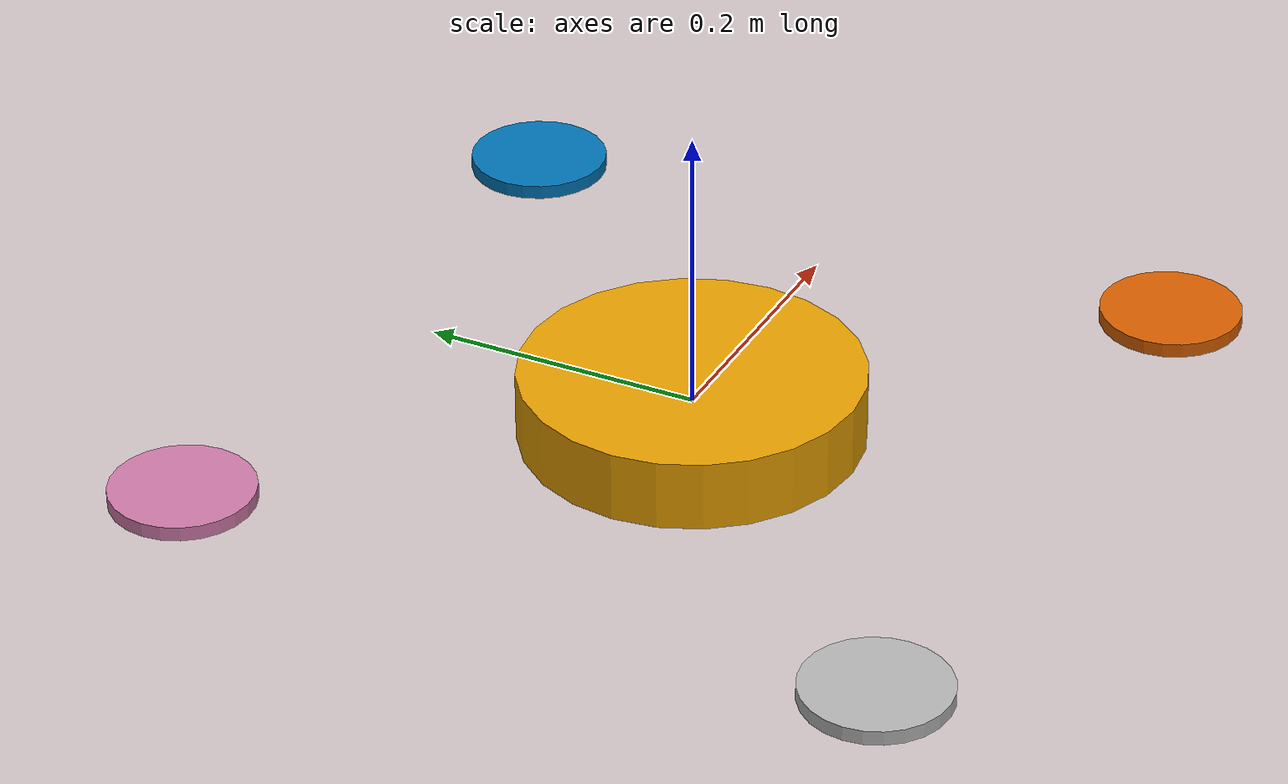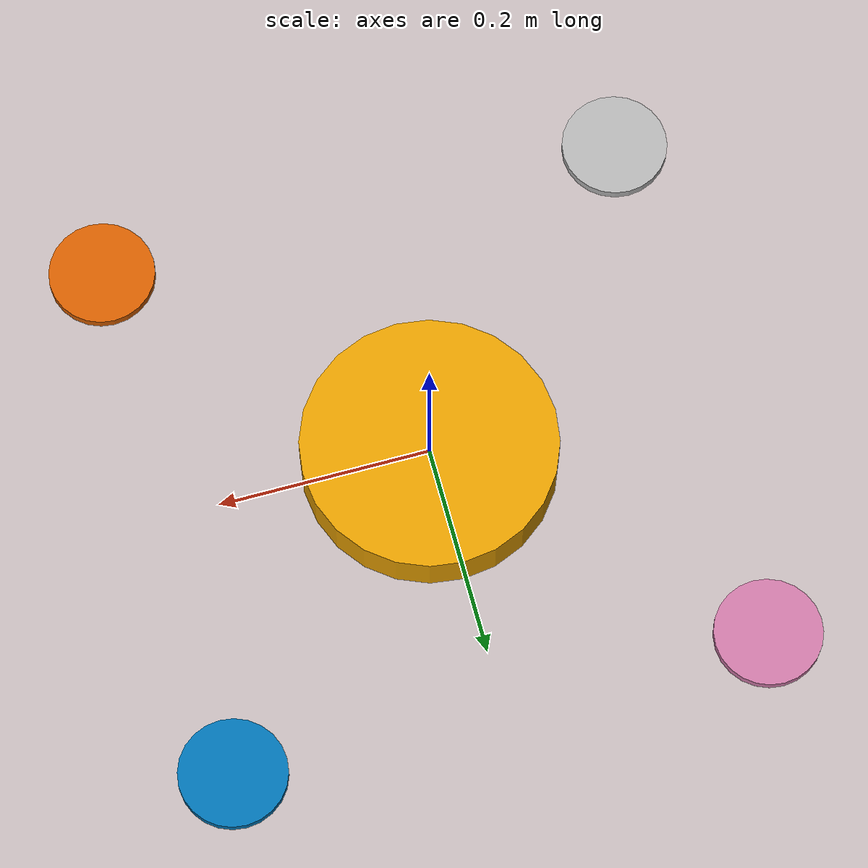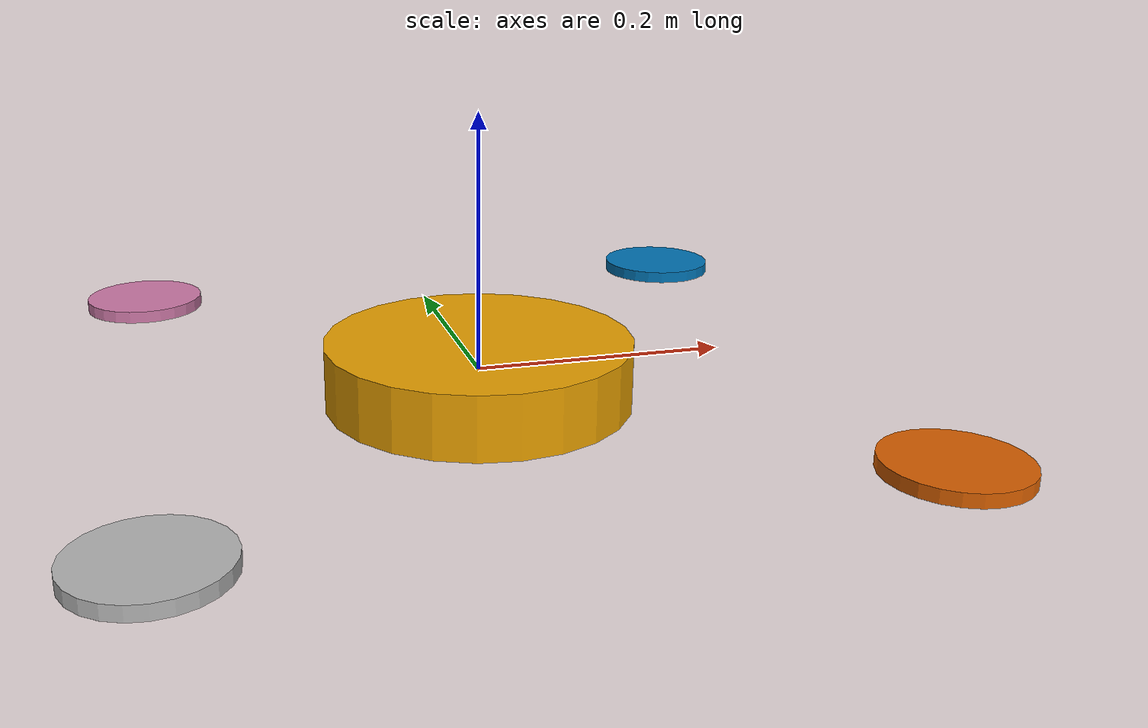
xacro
<?xml version="1.0"?>
<robot xmlns:xacro="http://www.ros.org/wiki/xacro" name="drone">

  <!-- Parameters -->
  <xacro:property name="mass" value="1.0"/>
  <xacro:property name="arm_length" value="0.25"/>
  <xacro:arg name="robot_ns" default=""/>
  <xacro:property name="robot_ns" value="$(arg robot_ns)"/>

  <!-- Base body -->
  <link name="base_link">
    <inertial>
      <mass value="${mass}"/>
      <origin xyz="0 0 0" rpy="0 0 0"/>
      <inertia ixx="0.02" ixy="0" ixz="0"
               iyy="0.02" iyz="0"
               izz="0.04"/>
    </inertial>

    <visual>
      <geometry>
        <cylinder radius="0.12" length="0.05"/>
      </geometry>
      <origin xyz="0 0 0" rpy="0 0 0"/>
    </visual>

    <collision>
      <geometry>
        <cylinder radius="0.12" length="0.05"/>
      </geometry>
      <origin xyz="0 0 0" rpy="0 0 0"/>
    </collision>
  </link>

  <link name="camera_frame"/>
  <link name="lidar_frame"/>
  <link name="camera_optical_frame"/>

  <!-- Rotor macro -->
  <xacro:macro name="rotor" params="name x y">
    <link name="${name}">
      <inertial>
        <mass value="0.05"/>
        <origin xyz="0 0 0" rpy="0 0 0"/>
        <inertia ixx="0.0001" ixy="0" ixz="0"
                 iyy="0.0001" iyz="0"
                 izz="0.0002"/>
      </inertial>

      <visual>
        <geometry>
          <cylinder radius="0.05" length="0.01"/>
        </geometry>
      </visual>

      <collision>
        <geometry>
          <cylinder radius="0.05" length="0.01"/>
        </geometry>
      </collision>
    </link>

    <joint name="${name}_joint" type="continuous">
      <parent link="base_link"/>
      <child link="${name}"/>
      <origin xyz="${x} ${y} 0" rpy="0 0 0"/>
      <axis xyz="0 0 1"/>
      <limit effort="10.0" velocity="500.0"/>
    </joint>
  </xacro:macro>

  <joint name="lidar_joint" type="fixed">
    <origin xyz="0.0 0.0 -0.1" rpy="0.0 1.57 0.0"/>
    <parent link="base_link"/>
    <child link="lidar_frame"/>
  </joint>

  <joint name="camera_joint" type="fixed">
    <origin xyz="0.0 0.0 -0.1" rpy="0.0 1.57 0.0"/>
    <parent link="base_link"/>
    <child link="camera_frame"/>
  </joint>

  <joint name="camera_optical_joint" type="fixed">
    <origin xyz="0 0 0" rpy="-${pi/2} 0.0 -${pi/2}"/>
    <parent link="camera_frame"/>
    <child link="camera_optical_frame"/>
  </joint>

  <!-- 4 rotors (alternating spin direction) -->
  <xacro:rotor name="rotor_fl" x="${arm_length}"  y="${arm_length}" />
  <xacro:rotor name="rotor_fr" x="${arm_length}"  y="-${arm_length}"/>
  <xacro:rotor name="rotor_rl" x="-${arm_length}" y="${arm_length}" />
  <xacro:rotor name="rotor_rr" x="-${arm_length}" y="-${arm_length}"/>

  <!-- IMU -->
  <gazebo reference="base_link">
    <sensor type="imu" name="imu_sensor">
      <update_rate>100</update_rate>
      <always_on>1</always_on>
      <visualize>true</visualize>
      <topic>${robot_ns}/imu/data_raw</topic>
    </sensor>
  </gazebo>
  <!-- Plugins -->
  <gazebo>
    <plugin filename="gz-sim-multicopter-motor-model-system" name="gz::sim::systems::MulticopterMotorModel">
      <robotNamespace>${robot_ns}</robotNamespace>
      <jointName>rotor_fl_joint</jointName>
      <linkName>rotor_fl</linkName>
      <turningDirection>ccw</turningDirection>
      <timeConstantUp>0.0125</timeConstantUp>
      <timeConstantDown>0.025</timeConstantDown>
      <maxRotVelocity>1000.0</maxRotVelocity>
      <motorConstant>8.54858e-06</motorConstant>
      <momentConstant>0.016</momentConstant>
      <commandSubTopic>motor_speed/0</commandSubTopic>
      <motorNumber>0</motorNumber>
      <rotorDragCoefficient>8.06428e-05</rotorDragCoefficient>
      <rollingMomentCoefficient>1e-06</rollingMomentCoefficient>
      <rotorVelocitySlowdownSim>10</rotorVelocitySlowdownSim>
      <motorType>velocity</motorType>
    </plugin>
    <plugin filename="gz-sim-multicopter-motor-model-system" name="gz::sim::systems::MulticopterMotorModel">
      <robotNamespace>${robot_ns}</robotNamespace>
      <jointName>rotor_fr_joint</jointName>
      <linkName>rotor_fr</linkName>
      <turningDirection>cw</turningDirection>
      <timeConstantUp>0.0125</timeConstantUp>
      <timeConstantDown>0.025</timeConstantDown>
      <maxRotVelocity>1000.0</maxRotVelocity>
      <motorConstant>8.54858e-06</motorConstant>
      <momentConstant>0.016</momentConstant>
      <commandSubTopic>motor_speed/1</commandSubTopic>
      <motorNumber>1</motorNumber>
      <rotorDragCoefficient>8.06428e-05</rotorDragCoefficient>
      <rollingMomentCoefficient>1e-06</rollingMomentCoefficient>
      <rotorVelocitySlowdownSim>10</rotorVelocitySlowdownSim>
      <motorType>velocity</motorType>
    </plugin>
    <plugin filename="gz-sim-multicopter-motor-model-system" name="gz::sim::systems::MulticopterMotorModel">
      <robotNamespace>${robot_ns}</robotNamespace>
      <jointName>rotor_rl_joint</jointName>
      <linkName>rotor_rl</linkName>
      <turningDirection>cw</turningDirection>
      <timeConstantUp>0.0125</timeConstantUp>
      <timeConstantDown>0.025</timeConstantDown>
      <maxRotVelocity>1000.0</maxRotVelocity>
      <motorConstant>8.54858e-06</motorConstant>
      <momentConstant>0.016</momentConstant>
      <commandSubTopic>motor_speed/2</commandSubTopic>
      <motorNumber>2</motorNumber>
      <rotorDragCoefficient>8.06428e-05</rotorDragCoefficient>
      <rollingMomentCoefficient>1e-06</rollingMomentCoefficient>
      <rotorVelocitySlowdownSim>10</rotorVelocitySlowdownSim>
      <motorType>velocity</motorType>
    </plugin>
    <plugin filename="gz-sim-multicopter-motor-model-system" name="gz::sim::systems::MulticopterMotorModel">
      <robotNamespace>${robot_ns}</robotNamespace>
      <jointName>rotor_rr_joint</jointName>
      <linkName>rotor_rr</linkName>
      <turningDirection>ccw</turningDirection>
      <timeConstantUp>0.0125</timeConstantUp>
      <timeConstantDown>0.025</timeConstantDown>
      <maxRotVelocity>1000.0</maxRotVelocity>
      <motorConstant>8.54858e-06</motorConstant>
      <momentConstant>0.016</momentConstant>
      <commandSubTopic>motor_speed/3</commandSubTopic>
      <motorNumber>3</motorNumber>
      <rotorDragCoefficient>8.06428e-05</rotorDragCoefficient>
      <rollingMomentCoefficient>1e-06</rollingMomentCoefficient>
      <rotorVelocitySlowdownSim>10</rotorVelocitySlowdownSim>
      <motorType>velocity</motorType>
    </plugin>
    <plugin filename="gz-sim-multicopter-control-system"
        name="gz::sim::systems::MulticopterVelocityControl">
        <robotNamespace>${robot_ns}</robotNamespace>
        <commandSubTopic>cmd_vel</commandSubTopic>
        <enableSubTopic>velocity_controller/enable</enableSubTopic>
        <comLinkName>base_link</comLinkName>
        <velocityGain>3.3 3.3 3.5</velocityGain>
        <attitudeGain>5.0 5.0 0.9</attitudeGain>
        <angularRateGain>1.5 1.5 0.09</angularRateGain>
        <maximumLinearAcceleration>2 2 2</maximumLinearAcceleration>
        <maximumLinearVelocity>5 5 5</maximumLinearVelocity>
        <maximumAngularVelocity>3 3 3</maximumAngularVelocity>
        <linearVelocityNoiseMean>0.0 0.0 0.0</linearVelocityNoiseMean>
        <linearVelocityNoiseStdDev>0.0 0.0 0.0</linearVelocityNoiseStdDev>
        <angularVelocityNoiseMean>0 0 0</angularVelocityNoiseMean>
        <angularVelocityNoiseStdDev>0.0 0.0 0.0</angularVelocityNoiseStdDev>
        <rotorConfiguration>
          <rotor>
            <jointName>rotor_fl_joint</jointName>
            <forceConstant>8.54858e-06</forceConstant>
            <momentConstant>0.016</momentConstant>
            <direction>1</direction>
          </rotor>
          <rotor>
            <jointName>rotor_fr_joint</jointName>
            <forceConstant>8.54858e-06</forceConstant>
            <momentConstant>0.016</momentConstant>
            <direction>-1</direction>
          </rotor>
          <rotor>
            <jointName>rotor_rl_joint</jointName>
            <forceConstant>8.54858e-06</forceConstant>
            <momentConstant>0.016</momentConstant>
            <direction>-1</direction>
          </rotor>
          <rotor>
            <jointName>rotor_rr_joint</jointName>
            <forceConstant>8.54858e-06</forceConstant>
            <momentConstant>0.016</momentConstant>
            <direction>1</direction>
          </rotor>
        </rotorConfiguration>
    </plugin>
    <plugin filename="libignition-gazebo-odometry-publisher-system.so" name="ignition::gazebo::systems::OdometryPublisher">
        <update_frequency>10</update_frequency>
        <odom_topic>${robot_ns}/true_pose</odom_topic>
        <odom_frame>odom</odom_frame>
        <dimensions>2</dimensions>
        <robot_base_frame>base_link</robot_base_frame>
        <tf_topic>${robot_ns}/tf</tf_topic>
    </plugin>
  </gazebo>
     <gazebo reference="camera_frame">
      <sensor name="camera" type="camera">
          <camera name="drone_camera">
              <horizontal_fov>1.9</horizontal_fov>
              <image>
                  <width>640</width>
                  <height>480</height>
                  <format>R8G8B8</format>
              </image>
              <clip>
                  <near>0.2</near>
                  <far>300</far>
              </clip>
              <noise>
                <type>gaussian</type>
                <mean>0.0</mean>
                <stddev>0.007</stddev>
              </noise>
              <distortion>
                <k1>-0.279817</k1>
                <k2>0.060321</k2>
                <k3>0.000487</k3>
                <p1>0.000310</p1>
                <p2>0.000000</p2>
                <center>0.5 0.5</center>
              </distortion>
          </camera>
          <always_on>1</always_on>
          <update_rate>30</update_rate>
          <visualize>true</visualize>
          <topic>${robot_ns}/camera/image_raw</topic>
          <gz_frame_id>camera_frame</gz_frame_id>
      </sensor>
    </gazebo>

    <!-- fake lidar for sim-->
    <gazebo reference="lidar_frame">
      <sensor name='lidar_frame' type='gpu_lidar'>
        <pose relative_to='lidar_frame'>0 0 0 0 0 0</pose>
        <topic>${robot_ns}/pointcloud</topic>
        <update_rate>10</update_rate>
        <ray>
          <scan>
            <horizontal>
              <samples>640</samples>
              <resolution>1</resolution>
              <min_angle>-1.396263</min_angle>
              <max_angle>1.396263</max_angle>
            </horizontal>
            <vertical>
              <samples>32</samples>
              <resolution>0.01</resolution>
              <min_angle>-1.39</min_angle>
              <max_angle>1.39</max_angle>
            </vertical>
          </scan>
          <range>
            <min>1.0</min>
            <max>10.0</max>
            <resolution>0.01</resolution>
          </range>
        </ray>
        <always_on>true</always_on>
        <visualize>true</visualize>
        <gz_frame_id>lidar_frame</gz_frame_id>
      </sensor>
    </gazebo>
</robot>
